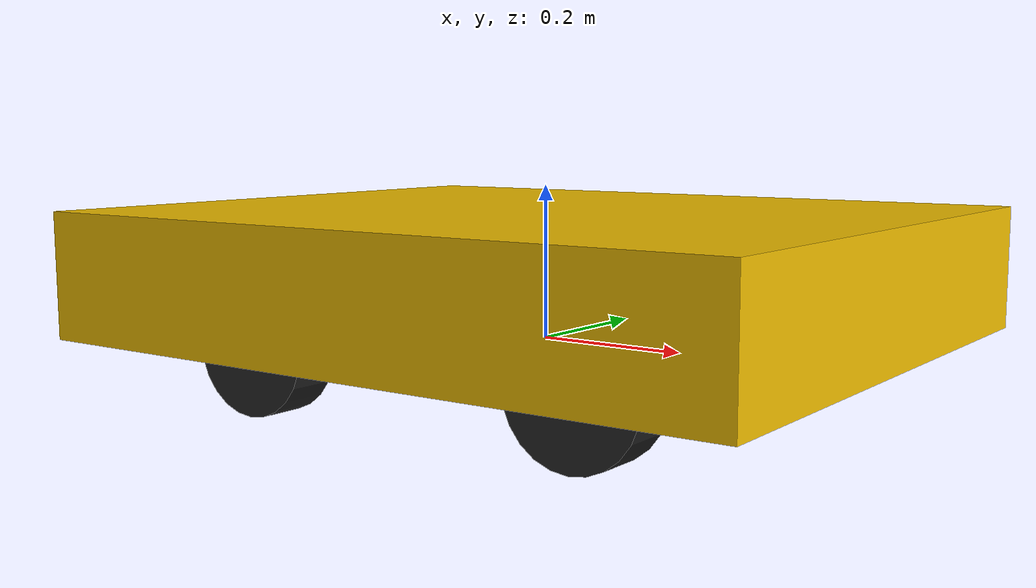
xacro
<?xml version="1.0"?>
<robot xmlns:xacro="http://www.ros.org/wiki/xacro" name="ridgeback">

  <!-- ── Constants ──────────────────────────────────────────────────────────── -->
  <xacro:property name="PI"             value="3.14159265358979"/>
  <xacro:property name="chassis_length" value="0.960"/>
  <xacro:property name="chassis_width"  value="0.793"/>
  <xacro:property name="chassis_height" value="0.164"/>
  <xacro:property name="chassis_mass"   value="60.0"/>
  <xacro:property name="wheel_radius"   value="0.0875"/>
  <xacro:property name="wheel_width"    value="0.060"/>
  <xacro:property name="wheel_mass"     value="1.5"/>
  <xacro:property name="wheelbase"      value="0.476"/>   <!-- front–rear -->
  <xacro:property name="track"          value="0.476"/>   <!-- left–right -->
  <!-- Z-offset so wheels rest on ground (z=0) -->
  <xacro:property name="wheel_z"        value="${wheel_radius}"/>

  <!-- ── Inertia helpers ────────────────────────────────────────────────────── -->
  <xacro:macro name="box_inertia" params="m x y z">
    <inertial>
      <mass value="${m}"/>
      <inertia ixx="${m*(y*y+z*z)/12}" ixy="0" ixz="0"
               iyy="${m*(x*x+z*z)/12}" iyz="0"
               izz="${m*(x*x+y*y)/12}"/>
    </inertial>
  </xacro:macro>

  <xacro:macro name="cyl_inertia" params="m r h">
    <inertial>
      <mass value="${m}"/>
      <inertia ixx="${m*(3*r*r+h*h)/12}" ixy="0" ixz="0"
               iyy="${m*(3*r*r+h*h)/12}" iyz="0"
               izz="${m*r*r/2}"/>
    </inertial>
  </xacro:macro>

  <!-- ── base_footprint ────────────────────────────────────────────────────── -->
  <link name="base_footprint"/>

  <joint name="base_footprint_joint" type="fixed">
    <parent link="base_footprint"/>
    <child  link="base_link"/>
    <origin xyz="0 0 ${wheel_z}" rpy="0 0 0"/>
  </joint>

  <!-- ── base_link (chassis) ───────────────────────────────────────────────── -->
  <link name="base_link">
    <xacro:box_inertia m="${chassis_mass}"
                       x="${chassis_length}"
                       y="${chassis_width}"
                       z="${chassis_height}"/>
    <visual>
      <origin xyz="0 0 0" rpy="0 0 0"/>
      <geometry>
        <box size="${chassis_length} ${chassis_width} ${chassis_height}"/>
      </geometry>
      <material name="ridgeback_yellow">
        <color rgba="0.95 0.75 0.0 1.0"/>
      </material>
    </visual>
    <collision>
      <origin xyz="0 0 0" rpy="0 0 0"/>
      <geometry>
        <box size="${chassis_length} ${chassis_width} ${chassis_height}"/>
      </geometry>
    </collision>
  </link>

  <!-- ── mid_mount — arm attachment point (top centre of chassis) ──────────── -->
  <link name="mid_mount"/>
  <joint name="mid_mount_joint" type="fixed">
    <parent link="base_link"/>
    <child  link="mid_mount"/>
    <origin xyz="0 0 ${chassis_height/2}" rpy="0 0 0"/>
  </joint>

  <!-- ── front_mount / rear_mount (convenience frames) ────────────────────── -->
  <link name="front_mount"/>
  <joint name="front_mount_joint" type="fixed">
    <parent link="base_link"/>
    <child  link="front_mount"/>
    <origin xyz="${chassis_length/2} 0 ${chassis_height/2}" rpy="0 0 0"/>
  </joint>

  <link name="rear_mount"/>
  <joint name="rear_mount_joint" type="fixed">
    <parent link="base_link"/>
    <child  link="rear_mount"/>
    <origin xyz="${-chassis_length/2} 0 ${chassis_height/2}" rpy="0 0 0"/>
  </joint>

  <!-- ── Wheel macro ────────────────────────────────────────────────────────── -->
  <xacro:macro name="mecanum_wheel" params="name x_reflect y_reflect">
    <link name="${name}">
      <xacro:cyl_inertia m="${wheel_mass}" r="${wheel_radius}" h="${wheel_width}"/>
      <visual>
        <origin xyz="0 0 0" rpy="${PI/2} 0 0"/>
        <geometry>
          <cylinder radius="${wheel_radius}" length="${wheel_width}"/>
        </geometry>
        <material name="wheel_dark">
          <color rgba="0.15 0.15 0.15 1.0"/>
        </material>
      </visual>
      <collision>
        <origin xyz="0 0 0" rpy="${PI/2} 0 0"/>
        <geometry>
          <cylinder radius="${wheel_radius}" length="${wheel_width}"/>
        </geometry>
      </collision>
    </link>

    <joint name="${name}_joint" type="continuous">
      <parent link="base_link"/>
      <child  link="${name}"/>
      <origin xyz="${x_reflect * wheelbase/2}
                   ${y_reflect * (track/2 + wheel_width/2)}
                   ${-chassis_height/2}"
              rpy="0 0 0"/>
      <axis xyz="0 1 0"/>
      <dynamics damping="0.1" friction="0.1"/>
    </joint>
  </xacro:macro>

  <xacro:mecanum_wheel name="front_left_wheel"  x_reflect=" 1" y_reflect=" 1"/>
  <xacro:mecanum_wheel name="front_right_wheel" x_reflect=" 1" y_reflect="-1"/>
  <xacro:mecanum_wheel name="rear_left_wheel"   x_reflect="-1" y_reflect=" 1"/>
  <xacro:mecanum_wheel name="rear_right_wheel"  x_reflect="-1" y_reflect="-1"/>

</robot>
